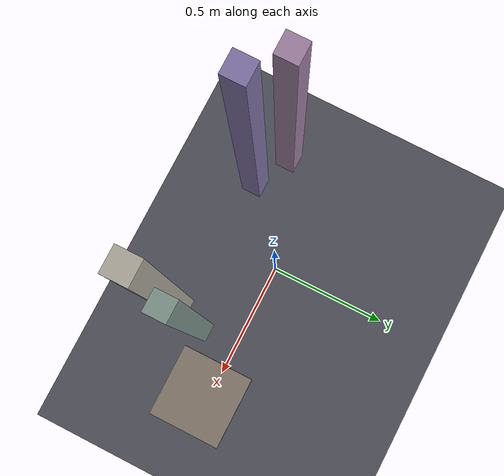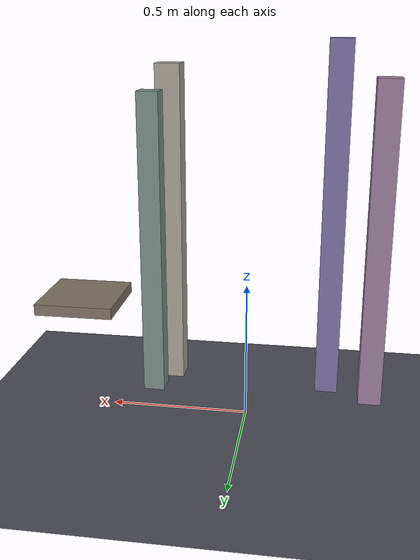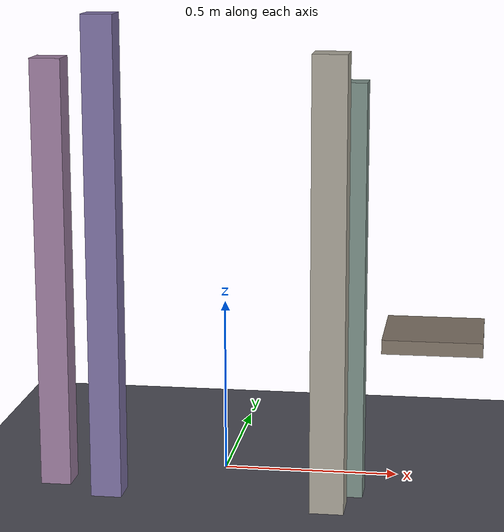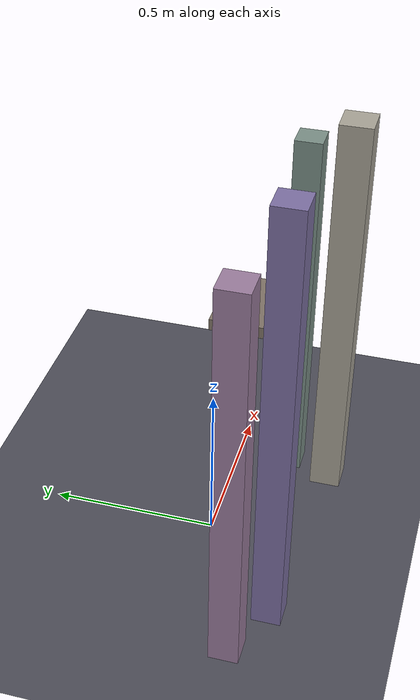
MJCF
<mujoco model="pillar_avoid_5">
  <compiler angle="radian" autolimits="true" boundmass="0" balanceinertia="true"/>
  <option impratio="10" gravity="0 0 -9.8" integrator="implicitfast" cone="elliptic" jacobian="sparse" noslip_iterations="4">
    <flag multiccd="enable" contact="enable" warmstart="enable"/>
  </option>
  <size njmax="6000" nconmax="6000"/>
  <visual><global offwidth="1280" offheight="720"/><map znear="0.001"/>
    <headlight ambient="0.45 0.45 0.45" diffuse="0.6 0.6 0.6"/></visual>
  <worldbody>
    <light pos="0.4 0.4 3" dir="0 0 -1" diffuse="0.7 0.7 0.7"/>
    <!-- Obstacle-avoidance variant 5: 4 tall PHYSICAL pillars; placements blocking >10%
         of exo-camera sightlines to the arm excluded (training view preserved). -->
    <body name="pillars" pos="0 0 0"><geom name="floor" type="plane" size="5 5 0.1" pos="0 0 0" rgba="0.30 0.30 0.34 1" contype="8" conaffinity="15"/><geom name="obj_pad" type="box" pos="0.60 0 0.42" size="0.14 0.14 0.02" rgba="0.5 0.45 0.4 1" contype="8" conaffinity="15"/><geom name="pillar_1" type="box" pos="0.377 -0.165 0.580" size="0.040 0.040 0.580" contype="8" conaffinity="15" rgba="0.48 0.56 0.53 1"/><geom name="pillar_2" type="box" pos="0.330 -0.297 0.624" size="0.047 0.047 0.624" contype="8" conaffinity="15" rgba="0.66 0.64 0.59 1"/><geom name="pillar_3" type="box" pos="-0.294 -0.250 0.670" size="0.043 0.043 0.670" contype="8" conaffinity="15" rgba="0.49 0.44 0.64 1"/><geom name="pillar_4" type="box" pos="-0.459 -0.169 0.607" size="0.043 0.043 0.607" contype="8" conaffinity="15" rgba="0.61 0.49 0.62 1"/></body>
  </worldbody>
</mujoco>
